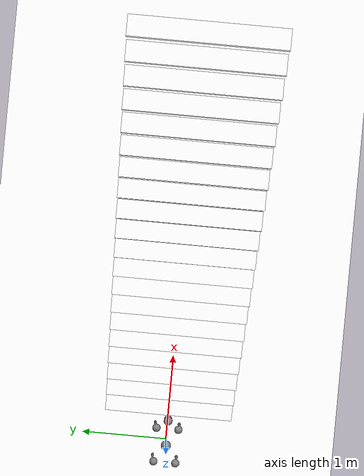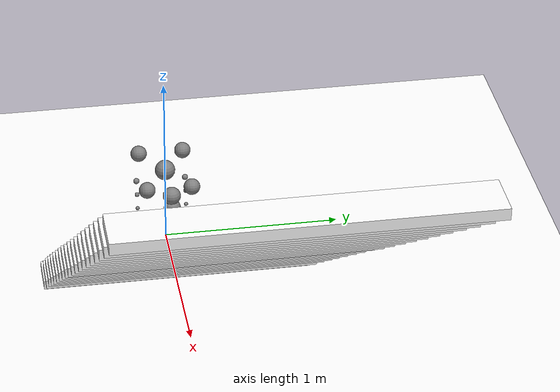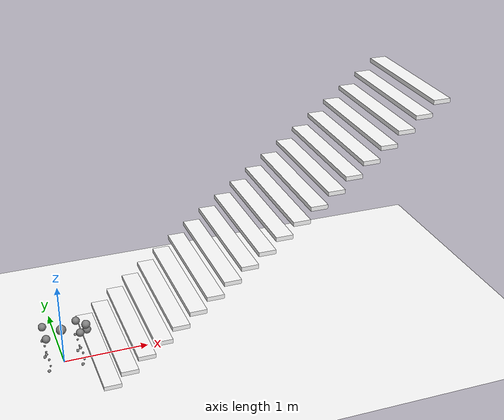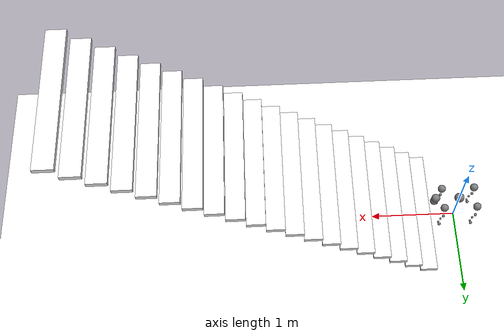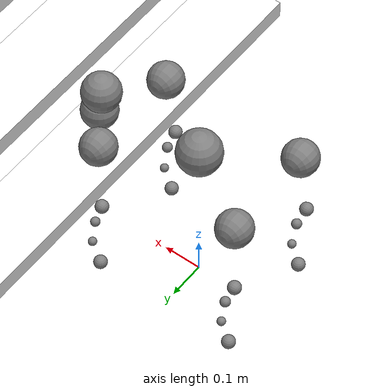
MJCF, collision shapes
<mujoco model="go2 scene">
  <include file="go2_mjx_feetonly2.xml"/>

  <statistic center="0 0 0.1" extent="0.8" meansize="0.04"/>

  <visual>
    <headlight diffuse=".8 .8 .8" ambient=".2 .2 .2" specular="1 1 1"/>
    <rgba force="1 0 0 1"/>
    <global azimuth="120" elevation="-20"/>
    <map force="0.01"/>
    <scale forcewidth="0.3" contactwidth="0.5" contactheight="0.2"/>
    <quality shadowsize="8192"/>
  </visual>

  <asset>
    <texture type="skybox" builtin="gradient" rgb1="1 1 1" rgb2="1 1 1" width="800" height="800"/>
    <texture type="2d" name="groundplane" builtin="checker" mark="edge" rgb1="1 1 1" rgb2="1 1 1" markrgb="0 0 0"
      width="300" height="300"/>
    <material name="groundplane" texture="groundplane" texuniform="true" texrepeat="5 5" reflectance="0"/>
    <material name="stairs" rgba="1 1 1 1" reflectance=".8"/>
  </asset>

  <default>
    <default class="stairs">
      <geom material="stairs" contype="1" conaffinity="0"/>
    </default>
  </default>

  <worldbody>
    <geom name="floor" size="0 0 0.01" material="groundplane" type="plane" contype="1" conaffinity="0"/>

    <body name="stairs" pos="0.2 0 0" childclass="stairs">
      <geom pos="0.2 0 0.075" type="box" size="0.1 0.75 0.025"/>
      <geom pos="0.4 0 0.22" type="box" size="0.1 0.75 0.025"/>
      <geom pos="0.6 0 0.375" type="box" size="0.1 0.75 0.025"/>
      <geom pos="0.8 0 0.525" type="box" size="0.1 0.75 0.025"/>
      <geom pos="1.0 0 0.675" type="box" size="0.1 0.75 0.025"/>
      <geom pos="1.2 0 0.825" type="box" size="0.1 0.75 0.025"/>
      <geom pos="1.4 0 0.975" type="box" size="0.1 0.75 0.025"/>
      <geom pos="1.6 0 1.125" type="box" size="0.1 0.75 0.025"/>
      <geom pos="1.8 0 1.275" type="box" size="0.1 0.75 0.025"/>
      <geom pos="2 0 1.42" type="box" size="0.1 0.75 0.025"/>
      <geom pos="2.2 0 1.57" type="box" size="0.1 0.75 0.025"/>
      <geom pos="2.4 0 1.72" type="box" size="0.1 0.75 0.025"/>
      <geom pos="2.6 0 1.87" type="box" size="0.1 0.75 0.025"/>
      <geom pos="2.8 0 2.02" type="box" size="0.1 0.75 0.025"/>
      <geom pos="3 0 2.17" type="box" size="0.1 0.75 0.025"/>
      <geom pos="3.2 0 2.32" type="box" size="0.1 0.75 0.025"/>
      <geom pos="3.4 0 2.47" type="box" size="0.1 0.75 0.025"/>
      <geom pos="3.6 0 2.62" type="box" size="0.1 0.75 0.025"/>
      <geom pos="3.8 0 2.77" type="box" size="0.1 0.75 0.025"/>
      <geom pos="4 0 2.92" type="box" size="0.1 0.75 0.025"/>
    </body>
  </worldbody>

  <keyframe>
    <key name="home" qpos="0 0 0.27 1 0 0 0 0 0.9 -1.8 0 0.9 -1.8 0 0.9 -1.8 0 0.9 -1.8"
      ctrl="0 0.9 -1.8 0 0.9 -1.8 0 0.9 -1.8 0 0.9 -1.8"/>
  </keyframe>
</mujoco>

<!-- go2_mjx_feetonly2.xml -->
<mujoco model="go2_feet_only">
  <compiler angle="radian" meshdir="../../../../../mujoco_menagerie/unitree_go2/assets" autolimits="true"/>

  <option cone="pyramidal" impratio="100" iterations="1" ls_iterations="5">
    <flag eulerdamp="disable"/>
  </option>

  <default>
    <default class="go2">
    <!-- Changed to no collision -->
      <geom friction="0.6" margin="0.001" condim="1" contype="0" conaffinity="0"/>

      <joint axis="0 1 0" damping="2" armature="0.01" frictionloss="0.2"/>
      <position forcerange="-23.7 23.7" kp="35"/>

      <default class="abduction">
        <joint axis="1 0 0" range="-1.0472 1.0472"/>
        <general ctrlrange="-0.9472 0.9472"/>
      </default>
      <default class="hip">
        <joint range="-1.5708 3.4907"/>
        <general ctrlrange="-1.4 2.5"/>
      </default>
      <default class="knee">
        <joint range="-2.7227 -0.83776"/>
        <general ctrlrange="-2.6227 -0.84776"/>
      </default>
      <default class="visual">
        <geom type="mesh" contype="0" conaffinity="0" group="2"/>
      </default>
      <default class="go2foot">
        <site group="1" pos="-0.002 0 -0.213"/>
        <geom rgba="0.231373 0.380392 0.705882 1"/>
      </default>
      <default class="collision">
        <geom group="3"/>
        <default class="foot">
          <geom size="0.0175" pos="-0.002 0 -0.213"
                priority="1"
                solimp="0.015 1 0.031"
                condim="6"
                friction="0.8 0.02 0.01"
                contype="0" conaffinity="1"/>
        </default>
      </default>
    </default>
  </default>

  <asset>
    <material name="metal" rgba=".9 .95 .95 1"/>
    <material name="black" rgba="0 0 0 1"/>
    <material name="white" rgba="1 1 1 1"/>
    <material name="gray" rgba="0.671705 0.692426 0.774270 1"/>

    <mesh file="base_0.obj"/>
    <mesh file="base_1.obj"/>
    <mesh file="base_2.obj"/>
    <mesh file="base_3.obj"/>
    <mesh file="base_4.obj"/>
    <mesh file="hip_0.obj"/>
    <mesh file="hip_1.obj"/>
    <mesh file="thigh_0.obj"/>
    <mesh file="thigh_1.obj"/>
    <mesh file="thigh_mirror_0.obj"/>
    <mesh file="thigh_mirror_1.obj"/>
    <mesh file="calf_0.obj"/>
    <mesh file="calf_1.obj"/>
    <mesh file="calf_mirror_0.obj"/>
    <mesh file="calf_mirror_1.obj"/>
    <mesh file="foot.obj"/>
  </asset>

  <worldbody>
    <body name="base" pos="0 0 0.445" childclass="go2">
      <camera name="track" pos="0.846 -1.465 0.916" xyaxes="0.866 0.500 0.000 -0.171 0.296 0.940" mode="trackcom"/>
      <!-- Changes -->
      <camera name="top" pos="-1 0 1" xyaxes="0 -1 0 0.7 0 0.7" mode="trackcom"/>
      <camera name="side" pos="0 -1 .3" xyaxes="1 0 0 0 1 2" mode="trackcom"/>
      <camera name="back" pos="-1 0 .3" xyaxes="0 -1 0 1 0 2" mode="trackcom"/>
      <!-- Changes end -->
      <inertial pos="0.021112 0 -0.005366" quat="-0.000543471 0.713435 -0.00173769 0.700719" mass="6.921"
        diaginertia="0.107027 0.0980771 0.0244531"/>
      <freejoint/>
      <geom mesh="base_0" material="black" class="visual"/>
      <geom mesh="base_1" material="black" class="visual"/>
      <geom mesh="base_2" material="black" class="visual"/>
      <geom mesh="base_3" material="white" class="visual"/>
      <geom mesh="base_4" material="gray" class="visual"/>
      <geom size="0.057 0.04675 0.057" class="collision"/>
      <geom size="0.05 0.045" pos="0.285 0 0.01" class="collision"/>
      <geom size="0.047" pos="0.293 0 -0.06" class="collision"/>
      <site name="imu" pos="-0.02557 0 0.04232"/>
      <body name="FL_hip" pos="0.1934 0.0465 0">
        <inertial pos="-0.0054 0.00194 -0.000105" quat="0.497014 0.499245 0.505462 0.498237" mass="0.678"
          diaginertia="0.00088403 0.000596003 0.000479967"/>
        <joint name="FL_hip_joint" class="abduction"/>
        <geom mesh="hip_0" material="metal" class="visual"/>
        <geom mesh="hip_1" material="gray" class="visual"/>
        <geom name="fl_hip" size="0.046 0.02" pos="0 0.08 0" quat="1 1 0 0" class="collision"/>
        <body name="FL_thigh" pos="0 0.0955 0">
          <inertial pos="-0.00374 -0.0223 -0.0327" quat="0.829533 0.0847635 -0.0200632 0.551623" mass="1.152"
            diaginertia="0.00594973 0.00584149 0.000878787"/>
          <joint name="FL_thigh_joint" class="hip"/>
          <geom mesh="thigh_0" material="metal" class="visual"/>
          <geom mesh="thigh_1" material="gray" class="visual"/>
          <geom name="fl_thigh1" size="0.017 0.01225 0.017" pos="-0.015 0 -0.1955" quat="0.707107 0 0.707107 0" class="collision"/>
          <body name="FL_calf" pos="0 0 -0.213">
            <inertial pos="0.00629595 -0.000622121 -0.141417" quat="0.710672 0.00154099 -0.00450087 0.703508"
              mass="0.241352" diaginertia="0.0014901 0.00146356 5.31397e-05"/>
            <joint name="FL_calf_joint" class="knee"/>
            <geom mesh="calf_0" material="gray" class="visual"/>
            <geom mesh="calf_1" material="black" class="visual"/>
            <geom name="fl_calf1" size="0.012 0.06" pos="0.008 0 -0.06" quat="0.994493 0 -0.104807 0" class="collision"/>
            <geom name="fl_calf2" size="0.011 0.0325" pos="0.02 0 -0.148" quat="0.999688 0 0.0249974 0" class="collision"/>
            <geom pos="0 0 -0.213" mesh="foot" class="visual" material="black"/>
            <geom name="FL" class="foot"/>
            <site name="FL_foot" class="go2foot"/>
          </body>
        </body>
      </body>
      <body name="FR_hip" pos="0.1934 -0.0465 0">
        <inertial pos="-0.0054 -0.00194 -0.000105" quat="0.498237 0.505462 0.499245 0.497014" mass="0.678"
          diaginertia="0.00088403 0.000596003 0.000479967"/>
        <joint name="FR_hip_joint" class="abduction"/>
        <geom mesh="hip_0" material="metal" class="visual" quat="4.63268e-05 1 0 0"/>
        <geom mesh="hip_1" material="gray" class="visual" quat="4.63268e-05 1 0 0"/>
        <geom name="fr_hip" size="0.046 0.02" pos="0 -0.08 0" quat="0.707107 0.707107 0 0" class="collision"/>
        <body name="FR_thigh" pos="0 -0.0955 0">
          <inertial pos="-0.00374 0.0223 -0.0327" quat="0.551623 -0.0200632 0.0847635 0.829533" mass="1.152"
            diaginertia="0.00594973 0.00584149 0.000878787"/>
          <joint name="FR_thigh_joint" class="hip"/>
          <geom mesh="thigh_mirror_0" material="metal" class="visual"/>
          <geom mesh="thigh_mirror_1" material="gray" class="visual"/>
          <geom name="fr_thigh1" size="0.017 0.01225 0.017" pos="-0.015 0 -0.1955" quat="0.707107 0 0.707107 0" class="collision"/>
          <body name="FR_calf" pos="0 0 -0.213">
            <inertial pos="0.00629595 0.000622121 -0.141417" quat="0.703508 -0.00450087 0.00154099 0.710672"
              mass="0.241352" diaginertia="0.0014901 0.00146356 5.31397e-05"/>
            <joint name="FR_calf_joint" class="knee"/>
            <geom mesh="calf_mirror_0" material="gray" class="visual"/>
            <geom mesh="calf_mirror_1" material="black" class="visual"/>
            <geom name="fr_calf1" size="0.013 0.06" pos="0.01 0 -0.06" quat="0.995004 0 -0.0998334 0" class="collision"/>
            <geom name="fr_calf2" size="0.011 0.0325" pos="0.02 0 -0.148" quat="0.999688 0 0.0249974 0" class="collision"/>
            <geom pos="0 0 -0.213" mesh="foot" class="visual" material="black"/>
            <geom name="FR" class="foot"/>
            <site name="FR_foot" class="go2foot"/>
          </body>
        </body>
      </body>
      <body name="RL_hip" pos="-0.1934 0.0465 0">
        <inertial pos="0.0054 0.00194 -0.000105" quat="0.505462 0.498237 0.497014 0.499245" mass="0.678"
          diaginertia="0.00088403 0.000596003 0.000479967"/>
        <joint name="RL_hip_joint" class="abduction"/>
        <geom mesh="hip_0" material="metal" class="visual" quat="4.63268e-05 0 1 0"/>
        <geom mesh="hip_1" material="gray" class="visual" quat="4.63268e-05 0 1 0"/>
        <geom name="rl_hip" size="0.046 0.02" pos="0 0.08 0" quat="0.707107 0.707107 0 0" class="collision"/>
        <body name="RL_thigh" pos="0 0.0955 0">
          <inertial pos="-0.00374 -0.0223 -0.0327" quat="0.829533 0.0847635 -0.0200632 0.551623" mass="1.152"
            diaginertia="0.00594973 0.00584149 0.000878787"/>
          <joint name="RL_thigh_joint" class="hip"/>
          <geom mesh="thigh_0" material="metal" class="visual"/>
          <geom mesh="thigh_1" material="gray" class="visual"/>
          <geom name="rl_thigh1" size="0.017 0.01225 0.017" pos="-0.015 0 -0.1955" quat="0.707107 0 0.707107 0" class="collision"/>
          <body name="RL_calf" pos="0 0 -0.213">
            <inertial pos="0.00629595 -0.000622121 -0.141417" quat="0.710672 0.00154099 -0.00450087 0.703508"
              mass="0.241352" diaginertia="0.0014901 0.00146356 5.31397e-05"/>
            <joint name="RL_calf_joint" class="knee"/>
            <geom mesh="calf_0" material="gray" class="visual"/>
            <geom mesh="calf_1" material="black" class="visual"/>
            <geom name="rl_calf1" size="0.013 0.06" pos="0.01 0 -0.06" quat="0.995004 0 -0.0998334 0" class="collision"/>
            <geom name="rl_calf2" size="0.011 0.0325" pos="0.02 0 -0.148" quat="0.999688 0 0.0249974 0" class="collision"/>
            <geom pos="0 0 -0.213" mesh="foot" class="visual" material="black"/>
            <geom name="RL" class="foot"/>
            <site name="RL_foot" class="go2foot"/>
          </body>
        </body>
      </body>
      <body name="RR_hip" pos="-0.1934 -0.0465 0">
        <inertial pos="0.0054 -0.00194 -0.000105" quat="0.499245 0.497014 0.498237 0.505462" mass="0.678"
          diaginertia="0.00088403 0.000596003 0.000479967"/>
        <joint name="RR_hip_joint" class="abduction"/>
        <geom mesh="hip_0" material="metal" class="visual" quat="2.14617e-09 4.63268e-05 4.63268e-05 -1"/>
        <geom mesh="hip_1" material="gray" class="visual" quat="2.14617e-09 4.63268e-05 4.63268e-05 -1"/>
        <geom name="rr_hip" size="0.046 0.02" pos="0 -0.08 0" quat="0.707107 0.707107 0 0" class="collision"/>
        <body name="RR_thigh" pos="0 -0.0955 0">
          <inertial pos="-0.00374 0.0223 -0.0327" quat="0.551623 -0.0200632 0.0847635 0.829533" mass="1.152"
            diaginertia="0.00594973 0.00584149 0.000878787"/>
          <joint name="RR_thigh_joint" class="hip"/>
          <geom mesh="thigh_mirror_0" material="metal" class="visual"/>
          <geom mesh="thigh_mirror_1" material="gray" class="visual"/>
          <geom name="rr_thigh1" size="0.017 0.01225 0.017" pos="-0.015 0 -0.1955" quat="0.707107 0 0.707107 0" class="collision"/>
          <body name="RR_calf" pos="0 0 -0.213">
            <inertial pos="0.00629595 0.000622121 -0.141417" quat="0.703508 -0.00450087 0.00154099 0.710672"
              mass="0.241352" diaginertia="0.0014901 0.00146356 5.31397e-05"/>
            <joint name="RR_calf_joint" class="knee"/>
            <geom mesh="calf_mirror_0" material="gray" class="visual"/>
            <geom mesh="calf_mirror_1" material="black" class="visual"/>
            <geom name="rr_calf1" size="0.013 0.06" pos="0.01 0 -0.06" quat="0.995004 0 -0.0998334 0" class="collision"/>
            <geom name="rr_calf2" size="0.011 0.0325" pos="0.02 0 -0.148" quat="0.999688 0 0.0249974 0" class="collision"/>
            <geom pos="0 0 -0.213" mesh="foot" class="visual" material="black"/>
            <geom name="RR" class="foot"/>
            <site name="RR_foot" class="go2foot"/>
          </body>
        </body>
      </body>
    </body>
  </worldbody>

  <actuator>
    <position class="abduction" name="FR_hip" joint="FR_hip_joint"/>
    <position class="hip" name="FR_thigh" joint="FR_thigh_joint"/>
    <position class="knee" name="FR_calf" joint="FR_calf_joint"/>
    <position class="abduction" name="FL_hip" joint="FL_hip_joint"/>
    <position class="hip" name="FL_thigh" joint="FL_thigh_joint"/>
    <position class="knee" name="FL_calf" joint="FL_calf_joint"/>
    <position class="abduction" name="RR_hip" joint="RR_hip_joint"/>
    <position class="hip" name="RR_thigh" joint="RR_thigh_joint"/>
    <position class="knee" name="RR_calf" joint="RR_calf_joint"/>
    <position class="abduction" name="RL_hip" joint="RL_hip_joint"/>
    <position class="hip" name="RL_thigh" joint="RL_thigh_joint"/>
    <position class="knee" name="RL_calf" joint="RL_calf_joint"/>
  </actuator>

  <sensor>
    <jointpos joint="FL_hip_joint" name="abduction_front_left_pos"/>
    <jointpos joint="FL_thigh_joint" name="hip_front_left_pos"/>
    <jointpos joint="FL_calf_joint" name="knee_front_left_pos"/>
    <jointpos joint="RL_hip_joint" name="abduction_hind_left_pos"/>
    <jointpos joint="RL_thigh_joint" name="hip_hind_left_pos"/>
    <jointpos joint="RL_calf_joint" name="knee_hind_left_pos"/>
    <jointpos joint="FR_hip_joint" name="abduction_front_right_pos"/>
    <jointpos joint="FR_thigh_joint" name="hip_front_right_pos"/>
    <jointpos joint="FR_calf_joint" name="knee_front_right_pos"/>
    <jointpos joint="RR_hip_joint" name="abduction_hind_right_pos"/>
    <jointpos joint="RR_thigh_joint" name="hip_hind_right_pos"/>
    <jointpos joint="RR_calf_joint" name="knee_hind_right_pos"/>
    <jointvel joint="FL_hip_joint" name="abduction_front_left_vel"/>
    <jointvel joint="FL_thigh_joint" name="hip_front_left_vel"/>
    <jointvel joint="FL_calf_joint" name="knee_front_left_vel"/>
    <jointvel joint="RL_hip_joint" name="abduction_hind_left_vel"/>
    <jointvel joint="RL_thigh_joint" name="hip_hind_left_vel"/>
    <jointvel joint="RL_calf_joint" name="knee_hind_left_vel"/>
    <jointvel joint="FR_hip_joint" name="abduction_front_right_vel"/>
    <jointvel joint="FR_thigh_joint" name="hip_front_right_vel"/>
    <jointvel joint="FR_calf_joint" name="knee_front_right_vel"/>
    <jointvel joint="RR_hip_joint" name="abduction_hind_right_vel"/>
    <jointvel joint="RR_thigh_joint" name="hip_hind_right_vel"/>
    <jointvel joint="RR_calf_joint" name="knee_hind_right_vel"/>
    <gyro site="imu" name="gyro"/>
    <accelerometer site="imu" name="accelerometer"/>
    <framequat objtype="site" objname="imu" name="orientation"/>
    <framepos objtype="site" objname="imu" name="global_position"/>
    <framelinvel objtype="site" objname="imu" name="global_linvel"/>
    <frameangvel objtype="site" objname="imu" name="global_angvel"/>
    <framelinvel objtype="site" objname="FR_foot" name="FR_foot_global_linvel"/>
    <framelinvel objtype="site" objname="FL_foot" name="FL_foot_global_linvel"/>
    <framelinvel objtype="site" objname="RR_foot" name="RR_foot_global_linvel"/>
    <framelinvel objtype="site" objname="RL_foot" name="RL_foot_global_linvel"/>
      <velocimeter site="imu" name="local_linvel"/>
    <framezaxis objtype="site" objname="imu" name="upvector"/>

  </sensor>

</mujoco>
